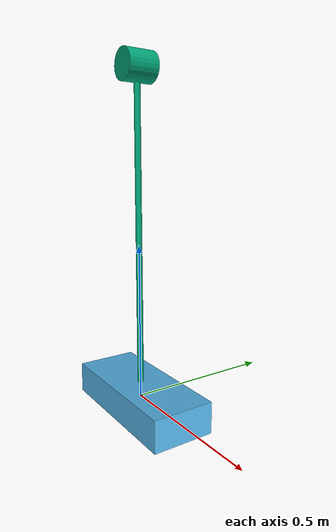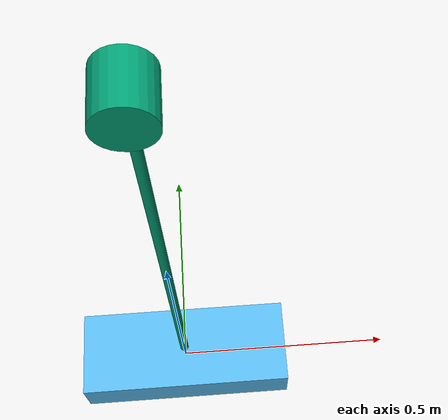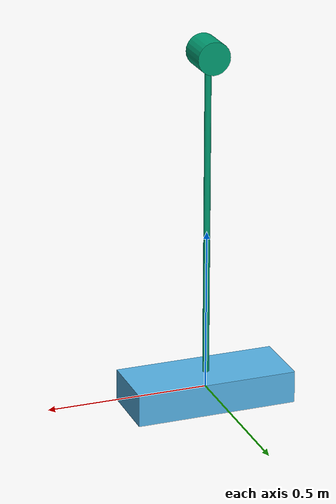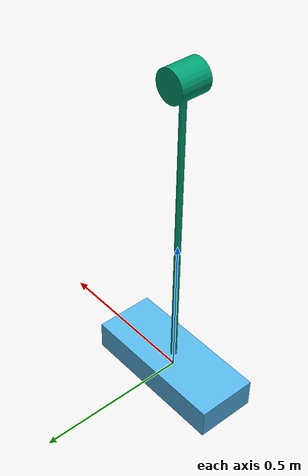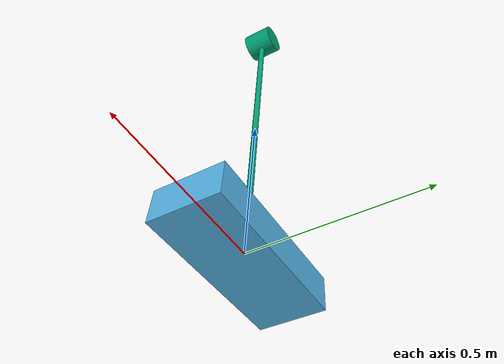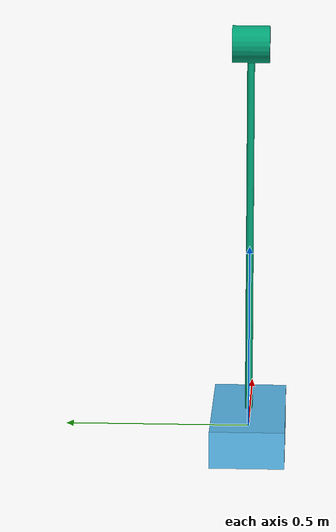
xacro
<?xml version="1.0"?>
<robot name="cartpole">
    <link name="world">

    </link>

    <link name="cart">
        <visual>
            <geometry>
                <box size="0.5 0.2 0.1"/>
            </geometry>
        </visual>
    </link>

    <link name="pendulum">
        <visual>
            <geometry>
                <cylinder length="1.0" radius="0.01"/>
            </geometry>
            <origin xyz="0 0 0.5"/>
        </visual>
        <visual>
            <geometry>
                <cylinder length="0.1" radius="0.05"/>
            </geometry>
            <origin xyz="0 0 1" rpy="1.57 0 0"/>
        </visual>
    </link>

    <!-- Joints of the system -->
    <joint name="cart_joint" type="prismatic">
        <parent link="world"/>
        <child link="cart"/>
        <origin xyz="0 0 0"/>
        <axis xyz="1 0 0"/>
        <limit effort="1000.0" lower="-2.0" upper="2.0" velocity="100"/>
    </joint>

    <joint name="pendulum_joint" type="continuous">
        <parent link="cart"/>
        <child link="pendulum"/>
        <origin xyz="0 0 0.05" rpy="0 0 0"/>
        <axis xyz="0 1 0"/>
    </joint>
</robot>
